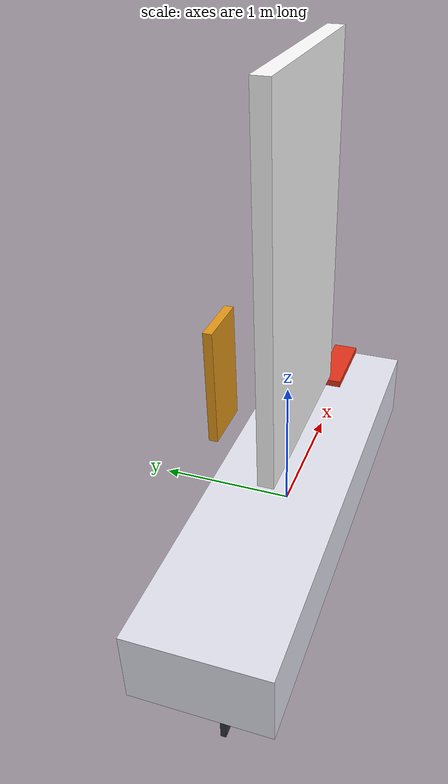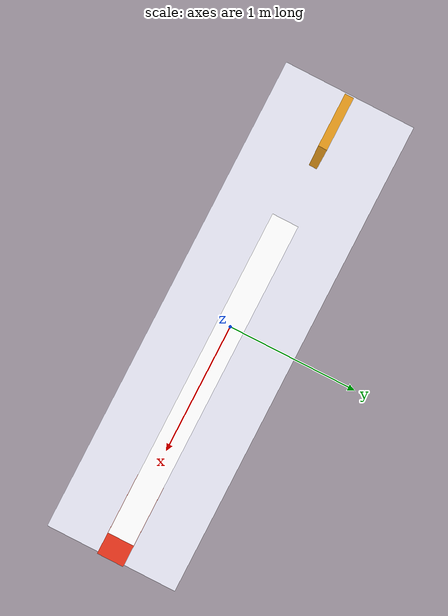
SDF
<?xml version="1.0" encoding="UTF-8"?>
<sdf version="1.9">
  <model name="polaris">
    <!-- Hull: carries the boat's full mass and inertia, and all of the displaced volume. -->
    <link name="hull">
      <inertial>
        <pose>0 0 -0.35 0 0 0</pose>
        <mass>276.0</mass>
        <inertia>
          <ixx>175.86</ixx>
          <ixy>0</ixy>
          <ixz>0</ixz>
          <!-- I_yy is not tracked by the 4-DOF kinematic model (no pitch DOF). Estimated
               here from the hull's slenderness; pitch is lightly excited in practice. -->
          <iyy>160.0</iyy>
          <iyz>0</iyz>
          <izz>119.04</izz>
        </inertia>
      </inertial>

      <!-- Sets buoyancy, not just contact: the boat floats once 0.269 m^3 of this 1.96 m^3
           box is submerged. -->
      <collision name="hull_collision">
        <geometry>
          <box>
            <size>3.6 0.99 0.55</size>
          </box>
        </geometry>
      </collision>

      <visual name="hull_visual">
        <geometry>
          <box>
            <size>3.6 0.99 0.55</size>
          </box>
        </geometry>
        <material>
          <ambient>0.85 0.85 0.88 1</ambient>
          <diffuse>0.9 0.9 0.95 1</diffuse>
        </material>
      </visual>

      <!-- Deck marker, purely so bow direction is legible in the GUI. -->
      <visual name="bow_marker">
        <pose>1.5 0 0.3 0 0 0</pose>
        <geometry>
          <box>
            <size>0.6 0.2 0.06</size>
          </box>
        </geometry>
        <material>
          <ambient>0.9 0.2 0.1 1</ambient>
          <diffuse>0.9 0.2 0.1 1</diffuse>
        </material>
      </visual>

      <collision name="keel_collision">
        <pose>0.08 0 -1.13 0 0 0</pose>
        <geometry>
          <box>
            <size>0.45 0.06 1.15</size>
          </box>
        </geometry>
      </collision>
      <visual name="keel_visual">
        <pose>0.08 0 -1.13 0 0 0</pose>
        <geometry>
          <box>
            <size>0.45 0.06 1.15</size>
          </box>
        </geometry>
        <material>
          <ambient>0.2 0.2 0.25 1</ambient>
          <diffuse>0.2 0.2 0.25 1</diffuse>
        </material>
      </visual>

      <!-- Wind must reach the sail link via the world's WindEffects system. -->
      <enable_wind>false</enable_wind>
    </link>

    <link name="wing_sail">
      <pose>0.25 0 1.86 0 0 0</pose>
      <inertial>
        <mass>12.0</mass>
        <inertia>
          <ixx>6.0</ixx>
          <ixy>0</ixy>
          <ixz>0</ixz>
          <iyy>6.0</iyy>
          <iyz>0</iyz>
          <izz>0.6</izz>
        </inertia>
      </inertial>
      <collision name="wing_sail_collision">
        <geometry>
          <box>
            <size>1.5 0.12 2.7</size>
          </box>
        </geometry>
      </collision>
      <visual name="wing_sail_visual">
        <geometry>
          <box>
            <size>1.5 0.12 2.7</size>
          </box>
        </geometry>
        <material>
          <ambient>0.95 0.95 0.95 1</ambient>
          <diffuse>1 1 1 1</diffuse>
        </material>
      </visual>
      <enable_wind>true</enable_wind>
    </link>

    <!-- Trim tab: the actuated surface. WINGSAIL_TO_TRIM_TAB_BOOM_LENGTH = 1.43 m aft of
         the mast axis. -->
    <link name="trim_tab">
      <pose>-1.18 0 1.86 0 0 0</pose>
      <inertial>
        <mass>1.2</mass>
        <inertia>
          <ixx>0.4</ixx>
          <ixy>0</ixy>
          <ixz>0</ixz>
          <iyy>0.4</iyy>
          <iyz>0</iyz>
          <izz>0.05</izz>
        </inertia>
      </inertial>
      <collision name="trim_tab_collision">
        <geometry>
          <box>
            <size>0.3 0.05 0.66</size>
          </box>
        </geometry>
      </collision>
      <visual name="trim_tab_visual">
        <geometry>
          <box>
            <size>0.3 0.05 0.66</size>
          </box>
        </geometry>
        <material>
          <ambient>0.9 0.6 0.1 1</ambient>
          <diffuse>0.9 0.6 0.1 1</diffuse>
        </material>
      </visual>
      <enable_wind>true</enable_wind>
    </link>

    <!-- Rudder: RUDDER_CE_REL_TO_CG = (-1.35, 0.74), i.e. 1.35 m aft and 0.74 m below. -->
    <link name="rudder">
      <pose>-1.35 0 -0.74 0 0 0</pose>
      <inertial>
        <mass>3.0</mass>
        <inertia>
          <ixx>0.3</ixx>
          <ixy>0</ixy>
          <ixz>0</ixz>
          <iyy>0.3</iyy>
          <iyz>0</iyz>
          <izz>0.05</izz>
        </inertia>
      </inertial>
      <collision name="rudder_collision">
        <geometry>
          <box>
            <size>0.22 0.04 0.53</size>
          </box>
        </geometry>
      </collision>
      <visual name="rudder_visual">
        <geometry>
          <box>
            <size>0.22 0.04 0.53</size>
          </box>
        </geometry>
        <material>
          <ambient>0.2 0.2 0.25 1</ambient>
          <diffuse>0.2 0.2 0.25 1</diffuse>
        </material>
      </visual>
    </link>

    <!-- JOINTS -->

    <joint name="mast_joint" type="revolute">
      <parent>hull</parent>
      <child>wing_sail</child>
      <axis>
        <xyz>0 0 1</xyz>
        <limit>
          <lower>-3.14159</lower>
          <upper>3.14159</upper>
        </limit>
        <dynamics>
          <damping>2.0</damping>
        </dynamics>
      </axis>
    </joint>

    <!-- Contract joint: trim_tab_joint, revolute about +Z, CCW positive, +/-40 deg. -->
    <joint name="trim_tab_joint" type="revolute">
      <parent>wing_sail</parent>
      <child>trim_tab</child>
      <axis>
        <xyz>0 0 1</xyz>
        <limit>
          <lower>-0.698</lower>
          <upper>0.698</upper>
        </limit>
        <dynamics>
          <damping>0.1</damping>
        </dynamics>
      </axis>
    </joint>

    <!-- Contract joint: rudder_joint, revolute about +Z, CCW positive, +/-30 deg. -->
    <joint name="rudder_joint" type="revolute">
      <parent>hull</parent>
      <child>rudder</child>
      <axis>
        <xyz>0 0 1</xyz>
        <limit>
          <lower>-0.524</lower>
          <upper>0.524</upper>
        </limit>
        <dynamics>
          <damping>0.5</damping>
        </dynamics>
      </axis>
    </joint>

    <!-- PLUGINS -->

    <!-- Pose/velocity feedback consumed by gazebo_physics_bridge_node, bridged to
         /gazebo/odometry. Publishes on /model/polaris/odometry by default. -->
    <plugin filename="gz-sim-odometry-publisher-system"
            name="gz::sim::systems::OdometryPublisher">
      <dimensions>3</dimensions>
      <odom_publish_frequency>10</odom_publish_frequency>
      <odom_frame>world</odom_frame>
      <robot_base_frame>polaris</robot_base_frame>
    </plugin>

    <!-- Actuated joints. Topics must match BRIDGED_TOPICS in launch/gazebo_launch.py. -->
    <plugin filename="gz-sim-joint-position-controller-system"
            name="gz::sim::systems::JointPositionController">
      <joint_name>rudder_joint</joint_name>
      <topic>/model/polaris/joint/rudder_joint/cmd_pos</topic>
      <p_gain>8.0</p_gain>
      <i_gain>0.0</i_gain>
      <d_gain>1.0</d_gain>
    </plugin>
    <plugin filename="gz-sim-joint-position-controller-system"
            name="gz::sim::systems::JointPositionController">
      <joint_name>trim_tab_joint</joint_name>
      <topic>/model/polaris/joint/trim_tab_joint/cmd_pos</topic>
      <p_gain>3.0</p_gain>
      <i_gain>0.0</i_gain>
      <d_gain>0.3</d_gain>
    </plugin>

    <plugin filename="gz-sim-lift-drag-system" name="gz::sim::systems::LiftDrag">
      <link_name>wing_sail</link_name>
      <air_density>1.225</air_density>
      <area>2.01</area>
      <a0>0.0</a0>
      <cla>2.75</cla>
      <cda>0.05</cda>
      <alpha_stall>0.44</alpha_stall>
      <cla_stall>-2.7</cla_stall>
      <cda_stall>1.5</cda_stall>
      <cp>0 0 0</cp>
      <forward>1 0 0</forward>
      <upward>0 1 0</upward>
    </plugin>

    <plugin filename="gz-sim-lift-drag-system" name="gz::sim::systems::LiftDrag">
      <link_name>trim_tab</link_name>
      <air_density>1.225</air_density>
      <area>0.198</area>
      <a0>0.0</a0>
      <cla>2.75</cla>
      <cda>0.05</cda>
      <alpha_stall>0.44</alpha_stall>
      <cla_stall>-2.7</cla_stall>
      <cda_stall>1.5</cda_stall>
      <cp>0 0 0</cp>
      <forward>1 0 0</forward>
      <upward>0 1 0</upward>
    </plugin>

    <!-- Hydrodynamics: same LiftDrag system, seawater density. The rudder's CL peaks near
         0.92 at ~20 deg -> cla ~ 2.6/rad, stall at 0.35 rad. -->
    <plugin filename="gz-sim-lift-drag-system" name="gz::sim::systems::LiftDrag">
      <link_name>rudder</link_name>
      <air_density>1027</air_density>
      <area>0.117</area>
      <a0>0.0</a0>
      <cla>2.6</cla>
      <cda>0.02</cda>
      <alpha_stall>0.35</alpha_stall>
      <cla_stall>-2.5</cla_stall>
      <cda_stall>1.2</cda_stall>
      <cp>0 0 0</cp>
      <forward>1 0 0</forward>
      <upward>0 1 0</upward>
    </plugin>

    <plugin filename="gz-sim-lift-drag-system" name="gz::sim::systems::LiftDrag">
      <link_name>hull</link_name>
      <air_density>1027</air_density>
      <area>0.51</area>
      <a0>0.0</a0>
      <cla>2.75</cla>
      <cda>0.05</cda>
      <alpha_stall>0.44</alpha_stall>
      <cla_stall>-2.7</cla_stall>
      <cda_stall>1.5</cda_stall>
      <cp>0.08 0 -1.13</cp>
      <forward>1 0 0</forward>
      <upward>0 1 0</upward>
    </plugin>

    <plugin filename="gz-waves1-hydrodynamics-system" name="gz::sim::systems::Hydrodynamics">
      <enable>polaris::hull</enable>

      <wave>
        <algorithm>fft</algorithm>
        <tile_size>256</tile_size>
        <cell_count>256</cell_count>
        <wind_speed>1.96</wind_speed>
        <wind_angle_deg>45</wind_angle_deg>
        <steepness>2</steepness>
      </wave>

      <hydrodynamics>
        <damping_on>1</damping_on>
        <viscous_drag_on>1</viscous_drag_on>
        <pressure_drag_on>1</pressure_drag_on>

        <cDampL1>1.0E-6</cDampL1>
        <cDampL2>1.0E-6</cDampL2>
        <cDampR1>1.0E-6</cDampR1>
        <cDampR2>1.0E-6</cDampR2>

        <!-- Pressure drag. Stands in for the hull_drag_factor = 0.5 quadratic hull drag
             in constants.py, which this plugin resolves per-face instead. -->
        <cPDrag1>1.0E+2</cPDrag1>
        <cPDrag2>1.0E+2</cPDrag2>
        <fPDrag>0.4</fPDrag>
        <cSDrag1>1.0E+2</cSDrag1>
        <cSDrag2>1.0E+2</cSDrag2>
        <fSDrag>0.4</fSDrag>
        <vRDrag>1.0</vRDrag>
      </hydrodynamics>
    </plugin>
  </model>
</sdf>
